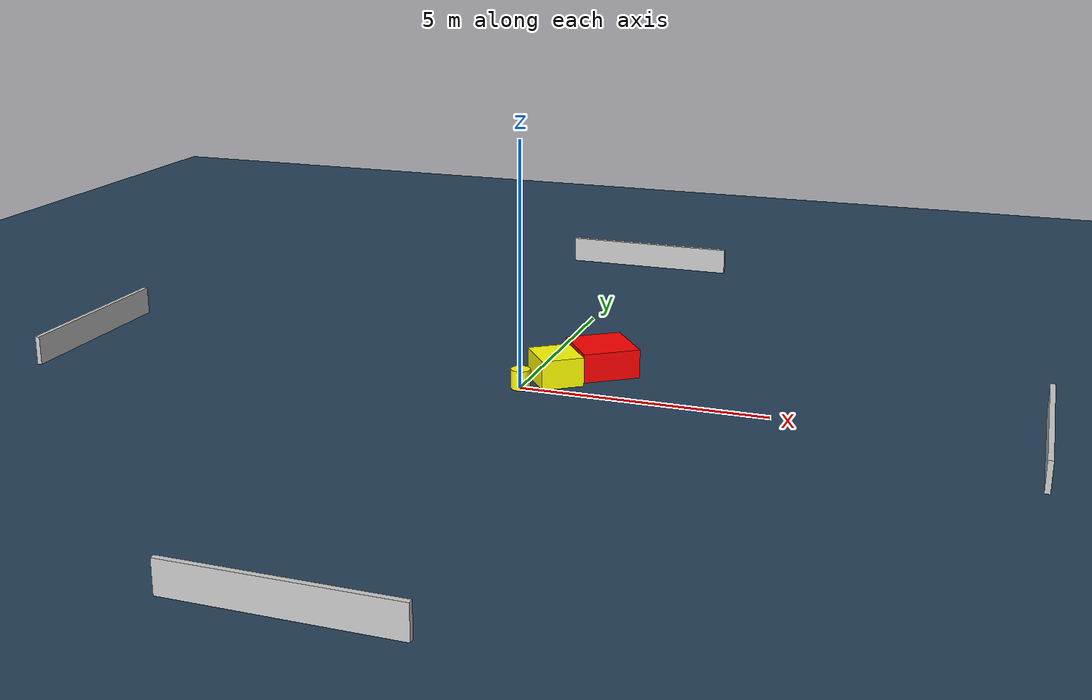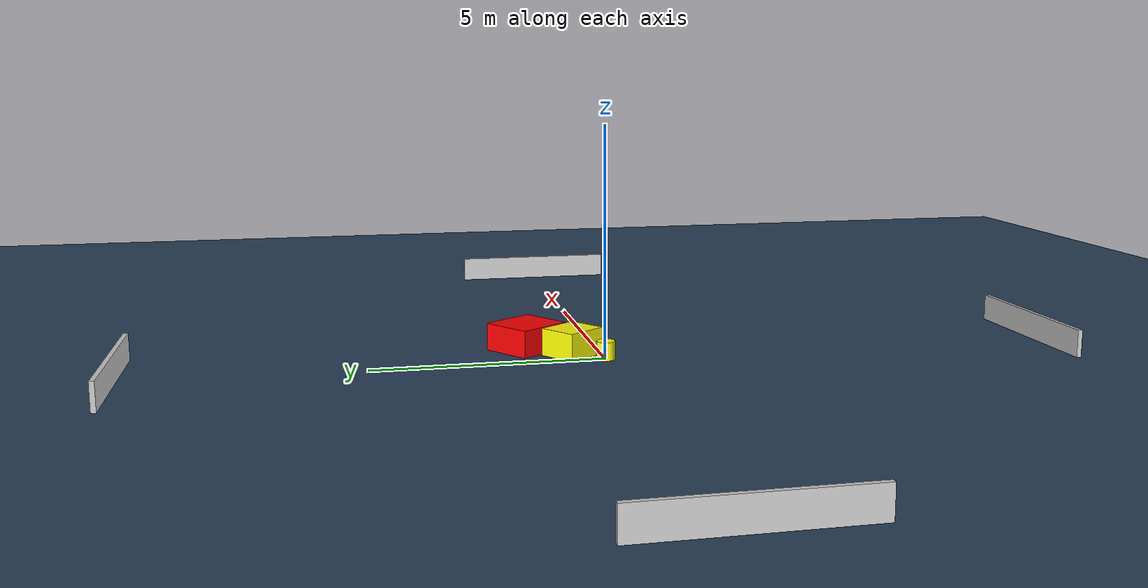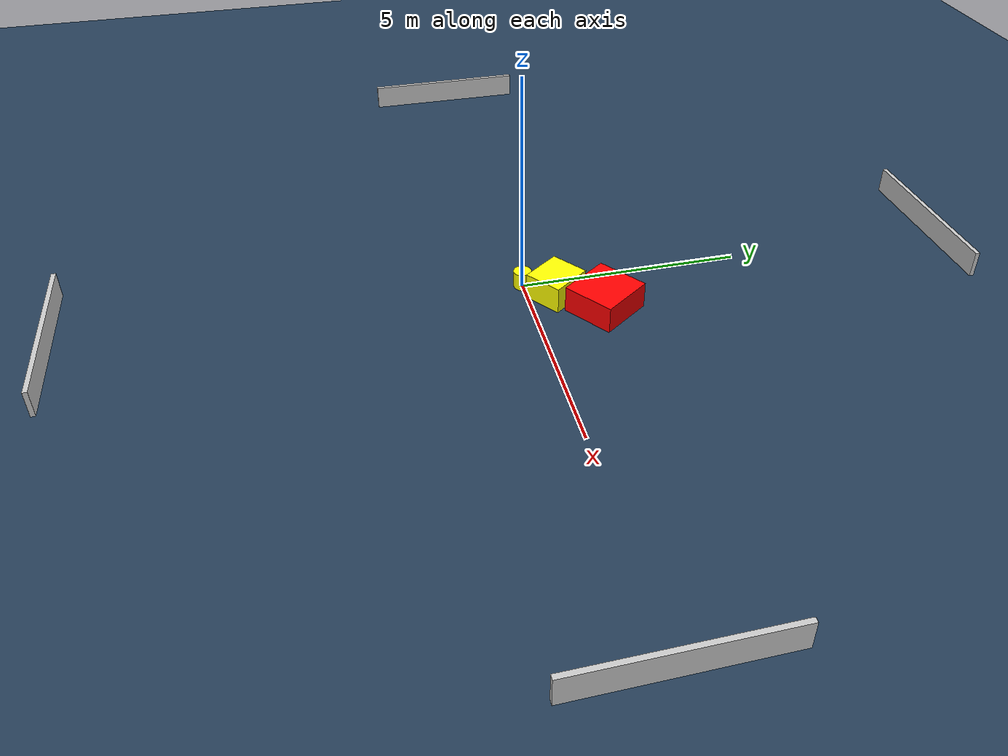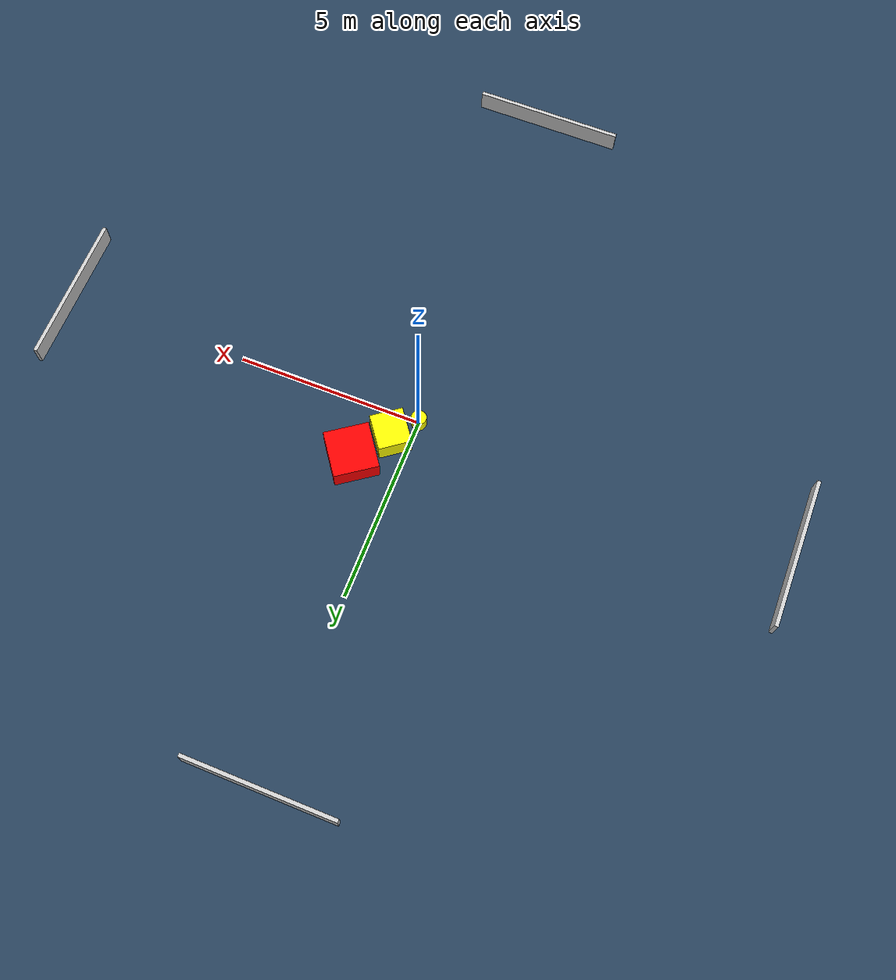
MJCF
<?xml version="1.0" ?>
<mujoco model="generated_environment">
  <option timestep="0.01" integrator="RK4" cone="elliptic"/>
  <default>
    <geom density="1"/>
  </default>
  <asset>
    <texture builtin="gradient" height="3072" name="skybox" rgb1="0.3 0.5 0.7" rgb2="0 0 0" type="skybox" width="512"/>
    <texture builtin="checker" height="300" name="groundplane" rgb1="0.2 0.3 0.4" rgb2="0.1 0.2 0.3" type="2d" width="300"/>
    <material name="groundplane" reflectance="0.2" texrepeat="5 5" texture="groundplane"/>
  </asset>
  <worldbody>
    <light dir="0 0 -1" directional="true" pos="0 0 1.5"/>
    <geom condim="3" friction="0.5 0.005 0.001" material="groundplane" name="floor" pos="0 0 0" size="0 0 0.05" type="plane"/>
    <body name="walls">
      <geom name="wall_1" condim="4" pos="-10.0 0.0 0.3" rgba="0.800000011920929 0.800000011920929 0.800000011920929 1.0" size="0.05 2.0 0.3" type="box"/>
      <geom name="wall_2" condim="4" pos="10.0 0.0 0.3" rgba="0.800000011920929 0.800000011920929 0.800000011920929 1.0" size="0.05 2.0 0.3" type="box"/>
      <geom name="wall_3" condim="4" pos="0.0 -10.0 0.3" rgba="0.800000011920929 0.800000011920929 0.800000011920929 1.0" size="2.0 0.05 0.3" type="box"/>
      <geom name="wall_4" condim="4" pos="0.0 10.0 0.3" rgba="0.800000011920929 0.800000011920929 0.800000011920929 1.0" size="2.0 0.05 0.3" type="box"/>
    </body>
    <body name="robot">
      <joint name="joint_x" type="slide" pos="0 0 0" axis="1 0 0"/>
      <joint name="joint_y" type="slide" pos="0 0 0" axis="0 1 0"/>
      <geom name="robot" type="cylinder" pos="0.0 0.0 0.2" size="0.2 0.2 0.0" mass="5.0" friction="1.0 0.005 0.0001" condim="4" rgba="1.0 1.0 0.0 1.0"/>
    </body>
    <body name="obstacle_1_movable">
      <geom name="obstacle_1_movable" condim="4" pos="0.5278535976126746 0.6300630627291715 0.3" euler="0 0 306.44439746129376" friction="0.0 0.005 0.001" rgba="1.0 1.0 0.0 1.0" size="0.47944791018011323 0.439957017025639 0.3" type="box" mass="0.1"/>
      <joint type="free"/>
    </body>
    <body name="obstacle_2_static">
      <geom name="obstacle_2_static" condim="4" pos="1.2419873383679048 1.5297065114548452 0.3" euler="0 0 35.50711452532222" friction="0.0 0.005 0.001" rgba="1.0 0.0 0.0 1.0" size="0.5958654585057618 0.6208233488878903 0.3" type="box"/>
    </body>
  </worldbody>
  <actuator>
    <motor name="actuator_x" joint="joint_x" gear="1" ctrlrange="-1 1"/>
    <motor name="actuator_y" joint="joint_y" gear="1" ctrlrange="-1 1"/>
  </actuator>
</mujoco>
